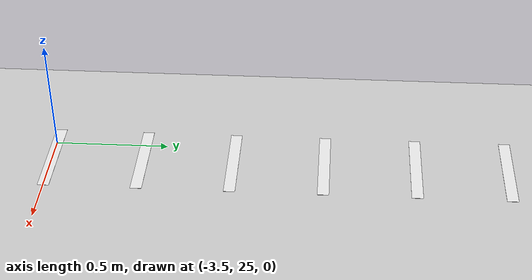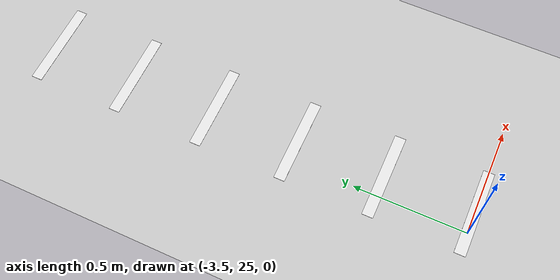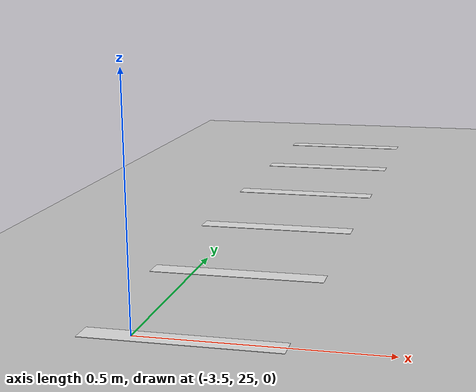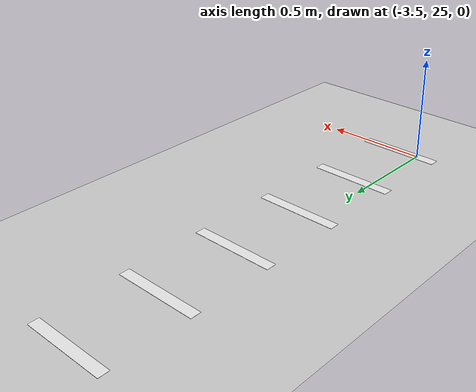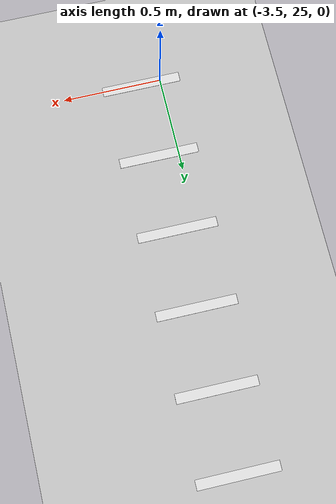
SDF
<sdf version="1.6">
 <world name="default">
  <model name="ground_plane">
   <static>1</static>
   <link name="link">
    <collision name="collision">
     <geometry><plane><normal>0 0 1</normal><size>100 100</size></plane></geometry>
     <surface><friction><ode><mu>100</mu><mu2>50</mu2></ode></friction></surface>
    </collision>
    <visual name="visual">
     <cast_shadows>0</cast_shadows>
     <geometry><plane><normal>0 0 1</normal><size>100 100</size></plane></geometry>
     <material>
      <script><uri>file://media/materials/scripts/gazebo.material</uri><name>Gazebo/Grey</name></script>
     </material>
    </visual>
   </link>
  </model>
  <model name="zebra_crossing_40cmx200cm_15">
   <link name="link_2">
    <inertial>
     <mass>1</mass>
     <inertia>
      <ixx>0.166667</ixx>
      <ixy>0</ixy>
      <ixz>0</ixz>
      <iyy>0.166667</iyy>
      <iyz>0</iyz>
      <izz>0.166667</izz>
     </inertia>
    </inertial>
    <visual name="ModelPreview_5::link_2::visual_1">
     <pose>-0.2 0 0 0 -0 0</pose>
     <geometry><box><size>0.05 0.4 0.001</size></box></geometry>
     <material>
      <lighting>1</lighting>
      <script><uri>file://media/materials/scripts/gazebo.material</uri><name>Gazebo/White</name></script>
     </material>
    </visual>
    <visual name="ModelPreview_5::link_2::visual_3">
     <pose>-0.6 0 0 0 -0 0</pose>
     <geometry><box><size>0.05 0.4 0.001</size></box></geometry>
     <material>
      <lighting>1</lighting>
      <script><uri>file://media/materials/scripts/gazebo.material</uri><name>Gazebo/White</name></script>
     </material>
    </visual>
    <visual name="ModelPreview_5::link_2::visual_4">
     <pose>1 0 0 0 -0 0</pose>
     <geometry><box><size>0.05 0.4 0.001</size></box></geometry>
     <material>
      <lighting>1</lighting>
      <script><uri>file://media/materials/scripts/gazebo.material</uri><name>Gazebo/White</name></script>
     </material>
    </visual>
    <visual name="visual">
     <pose>0.2 0 0 0 -0 0</pose>
     <geometry><box><size>0.05 0.4 0.001</size></box></geometry>
     <material>
      <lighting>1</lighting>
      <script><uri>file://media/materials/scripts/gazebo.material</uri><name>Gazebo/White</name></script>
     </material>
    </visual>
    <visual name="ModelPreview_5::link_2::visual_5">
     <pose>-1 0 0 0 -0 0</pose>
     <geometry><box><size>0.05 0.4 0.001</size></box></geometry>
     <material>
      <lighting>1</lighting>
      <script><uri>file://media/materials/scripts/gazebo.material</uri><name>Gazebo/White</name></script>
     </material>
    </visual>
    <visual name="ModelPreview_5::link_2::visual_2">
     <pose>0.6 0 0 0 -0 0</pose>
     <geometry><box><size>0.05 0.4 0.001</size></box></geometry>
     <material>
      <lighting>1</lighting>
      <script><uri>file://media/materials/scripts/gazebo.material</uri><name>Gazebo/White</name></script>
     </material>
    </visual>
    <collision name="collision_5">
     <pose>-1 0 0 0 -0 0</pose>
     <geometry><box><size>0.05 0.4 1e-05</size></box></geometry>
     <surface>
      <friction>
       <ode><mu>1</mu><mu2>1</mu2><fdir1>0 0 0</fdir1><slip1>0</slip1><slip2>0</slip2></ode>
       <torsional>
        <coefficient>1</coefficient>
        <patch_radius>0</patch_radius>
        <surface_radius>0</surface_radius>
        <use_patch_radius>1</use_patch_radius>
        <ode><slip>0</slip></ode>
       </torsional>
      </friction>
      <bounce><restitution_coefficient>0</restitution_coefficient><threshold>1e+06</threshold></bounce>
      <contact>
       <collide_without_contact>0</collide_without_contact>
       <collide_without_contact_bitmask>1</collide_without_contact_bitmask>
       <collide_bitmask>1</collide_bitmask>
       <ode>
        <soft_cfm>0</soft_cfm>
        <soft_erp>0.2</soft_erp>
        <kp>1e+13</kp>
        <kd>1</kd>
        <max_vel>0.01</max_vel>
        <min_depth>0</min_depth>
       </ode>
       <bullet>
        <split_impulse>1</split_impulse>
        <split_impulse_penetration_threshold>-0.01</split_impulse_penetration_threshold>
        <soft_cfm>0</soft_cfm>
        <soft_erp>0.2</soft_erp>
        <kp>1e+13</kp>
        <kd>1</kd>
       </bullet>
      </contact>
     </surface>
    </collision>
    <collision name="collision">
     <pose>0.2 0 0 0 -0 0</pose>
     <geometry><box><size>0.05 0.4 1e-05</size></box></geometry>
     <surface>
      <friction>
       <ode><mu>1</mu><mu2>1</mu2><fdir1>0 0 0</fdir1><slip1>0</slip1><slip2>0</slip2></ode>
       <torsional>
        <coefficient>1</coefficient>
        <patch_radius>0</patch_radius>
        <surface_radius>0</surface_radius>
        <use_patch_radius>1</use_patch_radius>
        <ode><slip>0</slip></ode>
       </torsional>
      </friction>
      <bounce><restitution_coefficient>0</restitution_coefficient><threshold>1e+06</threshold></bounce>
      <contact>
       <collide_without_contact>0</collide_without_contact>
       <collide_without_contact_bitmask>1</collide_without_contact_bitmask>
       <collide_bitmask>1</collide_bitmask>
       <ode>
        <soft_cfm>0</soft_cfm>
        <soft_erp>0.2</soft_erp>
        <kp>1e+13</kp>
        <kd>1</kd>
        <max_vel>0.01</max_vel>
        <min_depth>0</min_depth>
       </ode>
       <bullet>
        <split_impulse>1</split_impulse>
        <split_impulse_penetration_threshold>-0.01</split_impulse_penetration_threshold>
        <soft_cfm>0</soft_cfm>
        <soft_erp>0.2</soft_erp>
        <kp>1e+13</kp>
        <kd>1</kd>
       </bullet>
      </contact>
     </surface>
    </collision>
    <collision name="collision_3">
     <pose>-0.6 0 0 0 -0 0</pose>
     <geometry><box><size>0.05 0.4 1e-05</size></box></geometry>
     <surface>
      <friction>
       <ode><mu>1</mu><mu2>1</mu2><fdir1>0 0 0</fdir1><slip1>0</slip1><slip2>0</slip2></ode>
       <torsional>
        <coefficient>1</coefficient>
        <patch_radius>0</patch_radius>
        <surface_radius>0</surface_radius>
        <use_patch_radius>1</use_patch_radius>
        <ode><slip>0</slip></ode>
       </torsional>
      </friction>
      <bounce><restitution_coefficient>0</restitution_coefficient><threshold>1e+06</threshold></bounce>
      <contact>
       <collide_without_contact>0</collide_without_contact>
       <collide_without_contact_bitmask>1</collide_without_contact_bitmask>
       <collide_bitmask>1</collide_bitmask>
       <ode>
        <soft_cfm>0</soft_cfm>
        <soft_erp>0.2</soft_erp>
        <kp>1e+13</kp>
        <kd>1</kd>
        <max_vel>0.01</max_vel>
        <min_depth>0</min_depth>
       </ode>
       <bullet>
        <split_impulse>1</split_impulse>
        <split_impulse_penetration_threshold>-0.01</split_impulse_penetration_threshold>
        <soft_cfm>0</soft_cfm>
        <soft_erp>0.2</soft_erp>
        <kp>1e+13</kp>
        <kd>1</kd>
       </bullet>
      </contact>
     </surface>
    </collision>
    <collision name="collision_4">
     <pose>1 0 0 0 -0 0</pose>
     <geometry><box><size>0.05 0.4 1e-05</size></box></geometry>
     <surface>
      <friction>
       <ode><mu>1</mu><mu2>1</mu2><fdir1>0 0 0</fdir1><slip1>0</slip1><slip2>0</slip2></ode>
       <torsional>
        <coefficient>1</coefficient>
        <patch_radius>0</patch_radius>
        <surface_radius>0</surface_radius>
        <use_patch_radius>1</use_patch_radius>
        <ode><slip>0</slip></ode>
       </torsional>
      </friction>
      <bounce><restitution_coefficient>0</restitution_coefficient><threshold>1e+06</threshold></bounce>
      <contact>
       <collide_without_contact>0</collide_without_contact>
       <collide_without_contact_bitmask>1</collide_without_contact_bitmask>
       <collide_bitmask>1</collide_bitmask>
       <ode>
        <soft_cfm>0</soft_cfm>
        <soft_erp>0.2</soft_erp>
        <kp>1e+13</kp>
        <kd>1</kd>
        <max_vel>0.01</max_vel>
        <min_depth>0</min_depth>
       </ode>
       <bullet>
        <split_impulse>1</split_impulse>
        <split_impulse_penetration_threshold>-0.01</split_impulse_penetration_threshold>
        <soft_cfm>0</soft_cfm>
        <soft_erp>0.2</soft_erp>
        <kp>1e+13</kp>
        <kd>1</kd>
       </bullet>
      </contact>
     </surface>
    </collision>
    <collision name="collision_2">
     <pose>0.6 0 0 0 -0 0</pose>
     <geometry><box><size>0.05 0.4 1e-05</size></box></geometry>
     <surface>
      <friction>
       <ode><mu>1</mu><mu2>1</mu2><fdir1>0 0 0</fdir1><slip1>0</slip1><slip2>0</slip2></ode>
       <torsional>
        <coefficient>1</coefficient>
        <patch_radius>0</patch_radius>
        <surface_radius>0</surface_radius>
        <use_patch_radius>1</use_patch_radius>
        <ode><slip>0</slip></ode>
       </torsional>
      </friction>
      <bounce><restitution_coefficient>0</restitution_coefficient><threshold>1e+06</threshold></bounce>
      <contact>
       <collide_without_contact>0</collide_without_contact>
       <collide_without_contact_bitmask>1</collide_without_contact_bitmask>
       <collide_bitmask>1</collide_bitmask>
       <ode>
        <soft_cfm>0</soft_cfm>
        <soft_erp>0.2</soft_erp>
        <kp>1e+13</kp>
        <kd>1</kd>
        <max_vel>0.01</max_vel>
        <min_depth>0</min_depth>
       </ode>
       <bullet>
        <split_impulse>1</split_impulse>
        <split_impulse_penetration_threshold>-0.01</split_impulse_penetration_threshold>
        <soft_cfm>0</soft_cfm>
        <soft_erp>0.2</soft_erp>
        <kp>1e+13</kp>
        <kd>1</kd>
       </bullet>
      </contact>
     </surface>
    </collision>
    <collision name="collision_1">
     <pose>-0.2 0 0 0 -0 0</pose>
     <geometry><box><size>0.05 0.4 1e-05</size></box></geometry>
     <surface>
      <friction>
       <ode><mu>1</mu><mu2>1</mu2><fdir1>0 0 0</fdir1><slip1>0</slip1><slip2>0</slip2></ode>
       <torsional>
        <coefficient>1</coefficient>
        <patch_radius>0</patch_radius>
        <surface_radius>0</surface_radius>
        <use_patch_radius>1</use_patch_radius>
        <ode><slip>0</slip></ode>
       </torsional>
      </friction>
      <bounce><restitution_coefficient>0</restitution_coefficient><threshold>1e+06</threshold></bounce>
      <contact>
       <collide_without_contact>0</collide_without_contact>
       <collide_without_contact_bitmask>1</collide_without_contact_bitmask>
       <collide_bitmask>1</collide_bitmask>
       <ode>
        <soft_cfm>0</soft_cfm>
        <soft_erp>0.2</soft_erp>
        <kp>1e+13</kp>
        <kd>1</kd>
        <max_vel>0.01</max_vel>
        <min_depth>0</min_depth>
       </ode>
       <bullet>
        <split_impulse>1</split_impulse>
        <split_impulse_penetration_threshold>-0.01</split_impulse_penetration_threshold>
        <soft_cfm>0</soft_cfm>
        <soft_erp>0.2</soft_erp>
        <kp>1e+13</kp>
        <kd>1</kd>
       </bullet>
      </contact>
     </surface>
    </collision>
   </link>
   <static>1</static>
   <pose>-3.4 26 0 0 -0 1.5708</pose>
  </model>
 </world>
</sdf>
